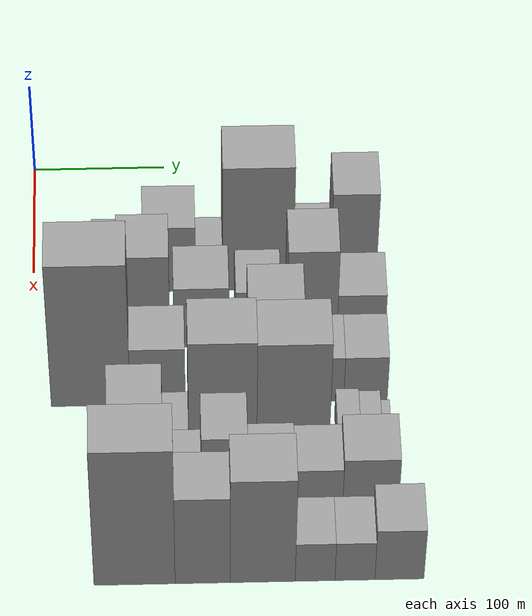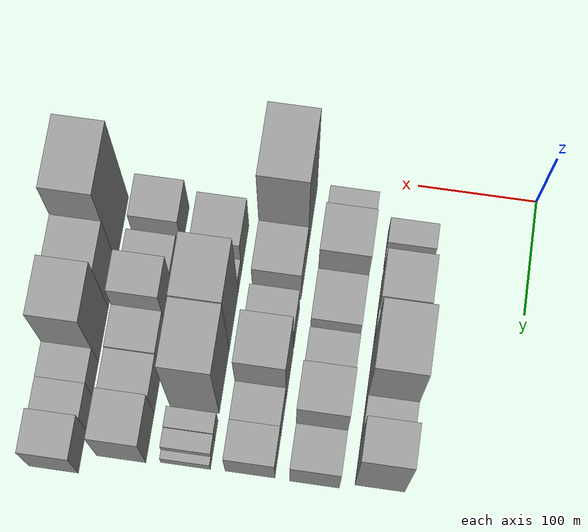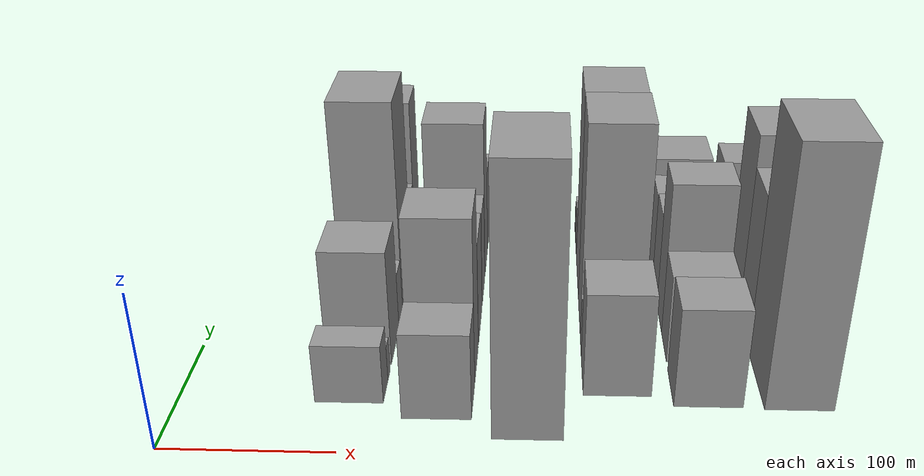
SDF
<sdf version="1.6">
 <world name="default">
  <model name="building_27">
   <static>1</static>
   <pose>100.0000 55.0933 0 0.000000 0.000000 0.000000</pose>
   <link name="link">
    <pose>0 0 19.50 0 0 0</pose>
    <collision name="collision"><geometry><box><size>40.0000 21.3444 39.0000</size></box></geometry></collision>
    <visual name="visual">
     <cast_shadows>0</cast_shadows>
     <geometry><box><size>40.0000 21.3444 39.0000</size></box></geometry>
     <material>
      <script>
       <uri>model://grey_wall/materials/scripts</uri>
       <uri>model://grey_wall/materials/textures</uri>
       <name>vrc/grey_wall</name>
      </script>
     </material>
    </visual>
   </link>
  </model>
  <model name="building_28">
   <static>1</static>
   <pose>100.0000 71.3840 0 0.000000 0.000000 0.000000</pose>
   <link name="link">
    <pose>0 0 12.00 0 0 0</pose>
    <collision name="collision"><geometry><box><size>40.0000 11.2370 24.0000</size></box></geometry></collision>
    <visual name="visual">
     <cast_shadows>0</cast_shadows>
     <geometry><box><size>40.0000 11.2370 24.0000</size></box></geometry>
     <material>
      <script>
       <uri>model://grey_wall/materials/scripts</uri>
       <uri>model://grey_wall/materials/textures</uri>
       <name>vrc/grey_wall</name>
      </script>
     </material>
    </visual>
   </link>
  </model>
  <model name="building_29">
   <static>1</static>
   <pose>100.0000 102.6483 0 0.000000 0.000000 0.000000</pose>
   <link name="link">
    <pose>0 0 39.00 0 0 0</pose>
    <collision name="collision"><geometry><box><size>40.0000 39.2917 78.0000</size></box></geometry></collision>
    <visual name="visual">
     <cast_shadows>0</cast_shadows>
     <geometry><box><size>40.0000 39.2917 78.0000</size></box></geometry>
     <material>
      <script>
       <uri>model://grey_wall/materials/scripts</uri>
       <uri>model://grey_wall/materials/textures</uri>
       <name>vrc/grey_wall</name>
      </script>
     </material>
    </visual>
   </link>
  </model>
  <model name="building_30">
   <static>1</static>
   <pose>100.0000 132.4842 0 0.000000 0.000000 0.000000</pose>
   <link name="link">
    <pose>0 0 19.50 0 0 0</pose>
    <collision name="collision"><geometry><box><size>40.0000 20.3801 39.0000</size></box></geometry></collision>
    <visual name="visual">
     <cast_shadows>0</cast_shadows>
     <geometry><box><size>40.0000 20.3801 39.0000</size></box></geometry>
     <material>
      <script>
       <uri>model://grey_wall/materials/scripts</uri>
       <uri>model://grey_wall/materials/textures</uri>
       <name>vrc/grey_wall</name>
      </script>
     </material>
    </visual>
   </link>
  </model>
  <model name="building_31">
   <static>1</static>
   <pose>100.0000 169.2116 0 0.000000 0.000000 0.000000</pose>
   <link name="link">
    <pose>0 0 73.50 0 0 0</pose>
    <collision name="collision"><geometry><box><size>40.0000 53.0747 147.0000</size></box></geometry></collision>
    <visual name="visual">
     <cast_shadows>0</cast_shadows>
     <geometry><box><size>40.0000 53.0747 147.0000</size></box></geometry>
     <material>
      <script>
       <uri>model://grey_wall/materials/scripts</uri>
       <uri>model://grey_wall/materials/textures</uri>
       <name>vrc/grey_wall</name>
      </script>
     </material>
    </visual>
   </link>
  </model>
  <model name="building_32">
   <static>1</static>
   <pose>100.0000 209.7995 0 0.000000 0.000000 0.000000</pose>
   <link name="link">
    <pose>0 0 27.00 0 0 0</pose>
    <collision name="collision"><geometry><box><size>40.0000 28.1011 54.0000</size></box></geometry></collision>
    <visual name="visual">
     <cast_shadows>0</cast_shadows>
     <geometry><box><size>40.0000 28.1011 54.0000</size></box></geometry>
     <material>
      <script>
       <uri>model://grey_wall/materials/scripts</uri>
       <uri>model://grey_wall/materials/textures</uri>
       <name>vrc/grey_wall</name>
      </script>
     </material>
    </visual>
   </link>
  </model>
  <model name="building_33">
   <static>1</static>
   <pose>100.0000 241.1143 0 0.000000 0.000000 0.000000</pose>
   <link name="link">
    <pose>0 0 57.00 0 0 0</pose>
    <collision name="collision"><geometry><box><size>40.0000 34.5283 114.0000</size></box></geometry></collision>
    <visual name="visual">
     <cast_shadows>0</cast_shadows>
     <geometry><box><size>40.0000 34.5283 114.0000</size></box></geometry>
     <material>
      <script>
       <uri>model://grey_wall/materials/scripts</uri>
       <uri>model://grey_wall/materials/textures</uri>
       <name>vrc/grey_wall</name>
      </script>
     </material>
    </visual>
   </link>
  </model>
  <model name="building_76">
   <static>1</static>
   <pose>152.0000 47.3638 0 0.000000 0.000000 0.000000</pose>
   <link name="link">
    <pose>0 0 28.50 0 0 0</pose>
    <collision name="collision"><geometry><box><size>40.0000 33.5037 57.0000</size></box></geometry></collision>
    <visual name="visual">
     <cast_shadows>0</cast_shadows>
     <geometry><box><size>40.0000 33.5037 57.0000</size></box></geometry>
     <material>
      <script>
       <uri>model://grey_wall/materials/scripts</uri>
       <uri>model://grey_wall/materials/textures</uri>
       <name>vrc/grey_wall</name>
      </script>
     </material>
    </visual>
   </link>
  </model>
  <model name="building_77">
   <static>1</static>
   <pose>152.0000 83.1974 0 0.000000 0.000000 0.000000</pose>
   <link name="link">
    <pose>0 0 55.50 0 0 0</pose>
    <collision name="collision"><geometry><box><size>40.0000 38.1635 111.0000</size></box></geometry></collision>
    <visual name="visual">
     <cast_shadows>0</cast_shadows>
     <geometry><box><size>40.0000 38.1635 111.0000</size></box></geometry>
     <material>
      <script>
       <uri>model://grey_wall/materials/scripts</uri>
       <uri>model://grey_wall/materials/textures</uri>
       <name>vrc/grey_wall</name>
      </script>
     </material>
    </visual>
   </link>
  </model>
  <model name="building_78">
   <static>1</static>
   <pose>152.0000 125.6947 0 0.000000 0.000000 0.000000</pose>
   <link name="link">
    <pose>0 0 36.00 0 0 0</pose>
    <collision name="collision"><geometry><box><size>40.0000 40.8310 72.0000</size></box></geometry></collision>
    <visual name="visual">
     <cast_shadows>0</cast_shadows>
     <geometry><box><size>40.0000 40.8310 72.0000</size></box></geometry>
     <material>
      <script>
       <uri>model://grey_wall/materials/scripts</uri>
       <uri>model://grey_wall/materials/textures</uri>
       <name>vrc/grey_wall</name>
      </script>
     </material>
    </visual>
   </link>
  </model>
  <model name="building_79">
   <static>1</static>
   <pose>152.0000 167.7199 0 0.000000 0.000000 0.000000</pose>
   <link name="link">
    <pose>0 0 33.00 0 0 0</pose>
    <collision name="collision"><geometry><box><size>40.0000 33.2195 66.0000</size></box></geometry></collision>
    <visual name="visual">
     <cast_shadows>0</cast_shadows>
     <geometry><box><size>40.0000 33.2195 66.0000</size></box></geometry>
     <material>
      <script>
       <uri>model://grey_wall/materials/scripts</uri>
       <uri>model://grey_wall/materials/textures</uri>
       <name>vrc/grey_wall</name>
      </script>
     </material>
    </visual>
   </link>
  </model>
  <model name="building_80">
   <static>1</static>
   <pose>152.0000 208.0052 0 0.000000 0.000000 0.000000</pose>
   <link name="link">
    <pose>0 0 57.00 0 0 0</pose>
    <collision name="collision"><geometry><box><size>40.0000 37.3511 114.0000</size></box></geometry></collision>
    <visual name="visual">
     <cast_shadows>0</cast_shadows>
     <geometry><box><size>40.0000 37.3511 114.0000</size></box></geometry>
     <material>
      <script>
       <uri>model://grey_wall/materials/scripts</uri>
       <uri>model://grey_wall/materials/textures</uri>
       <name>vrc/grey_wall</name>
      </script>
     </material>
    </visual>
   </link>
  </model>
  <model name="building_81">
   <static>1</static>
   <pose>152.0000 244.6676 0 0.000000 0.000000 0.000000</pose>
   <link name="link">
    <pose>0 0 30.00 0 0 0</pose>
    <collision name="collision"><geometry><box><size>40.0000 35.9738 60.0000</size></box></geometry></collision>
    <visual name="visual">
     <cast_shadows>0</cast_shadows>
     <geometry><box><size>40.0000 35.9738 60.0000</size></box></geometry>
     <material>
      <script>
       <uri>model://grey_wall/materials/scripts</uri>
       <uri>model://grey_wall/materials/textures</uri>
       <name>vrc/grey_wall</name>
      </script>
     </material>
    </visual>
   </link>
  </model>
  <model name="building_128">
   <static>1</static>
   <pose>204.0000 42.9055 0 0.000000 0.000000 0.000000</pose>
   <link name="link">
    <pose>0 0 85.50 0 0 0</pose>
    <collision name="collision"><geometry><box><size>40.0000 58.2277 171.0000</size></box></geometry></collision>
    <visual name="visual">
     <cast_shadows>0</cast_shadows>
     <geometry><box><size>40.0000 58.2277 171.0000</size></box></geometry>
     <material>
      <script>
       <uri>model://grey_wall/materials/scripts</uri>
       <uri>model://grey_wall/materials/textures</uri>
       <name>vrc/grey_wall</name>
      </script>
     </material>
    </visual>
   </link>
  </model>
  <model name="building_129">
   <static>1</static>
   <pose>204.0000 92.3567 0 0.000000 0.000000 0.000000</pose>
   <link name="link">
    <pose>0 0 34.50 0 0 0</pose>
    <collision name="collision"><geometry><box><size>40.0000 40.6747 69.0000</size></box></geometry></collision>
    <visual name="visual">
     <cast_shadows>0</cast_shadows>
     <geometry><box><size>40.0000 40.6747 69.0000</size></box></geometry>
     <material>
      <script>
       <uri>model://grey_wall/materials/scripts</uri>
       <uri>model://grey_wall/materials/textures</uri>
       <name>vrc/grey_wall</name>
      </script>
     </material>
    </visual>
   </link>
  </model>
  <model name="building_130">
   <static>1</static>
   <pose>204.0000 138.6356 0 0.000000 0.000000 0.000000</pose>
   <link name="link">
    <pose>0 0 30.00 0 0 0</pose>
    <collision name="collision"><geometry><box><size>40.0000 33.8832 60.0000</size></box></geometry></collision>
    <visual name="visual">
     <cast_shadows>0</cast_shadows>
     <geometry><box><size>40.0000 33.8832 60.0000</size></box></geometry>
     <material>
      <script>
       <uri>model://grey_wall/materials/scripts</uri>
       <uri>model://grey_wall/materials/textures</uri>
       <name>vrc/grey_wall</name>
      </script>
     </material>
    </visual>
   </link>
  </model>
  <model name="building_131">
   <static>1</static>
   <pose>204.0000 178.9792 0 0.000000 0.000000 0.000000</pose>
   <link name="link">
    <pose>0 0 58.50 0 0 0</pose>
    <collision name="collision"><geometry><box><size>40.0000 40.8040 117.0000</size></box></geometry></collision>
    <visual name="visual">
     <cast_shadows>0</cast_shadows>
     <geometry><box><size>40.0000 40.8040 117.0000</size></box></geometry>
     <material>
      <script>
       <uri>model://grey_wall/materials/scripts</uri>
       <uri>model://grey_wall/materials/textures</uri>
       <name>vrc/grey_wall</name>
      </script>
     </material>
    </visual>
   </link>
  </model>
  <model name="building_132">
   <static>1</static>
   <pose>204.0000 214.5938 0 0.000000 0.000000 0.000000</pose>
   <link name="link">
    <pose>0 0 27.00 0 0 0</pose>
    <collision name="collision"><geometry><box><size>40.0000 30.4252 54.0000</size></box></geometry></collision>
    <visual name="visual">
     <cast_shadows>0</cast_shadows>
     <geometry><box><size>40.0000 30.4252 54.0000</size></box></geometry>
     <material>
      <script>
       <uri>model://grey_wall/materials/scripts</uri>
       <uri>model://grey_wall/materials/textures</uri>
       <name>vrc/grey_wall</name>
      </script>
     </material>
    </visual>
   </link>
  </model>
  <model name="building_133">
   <static>1</static>
   <pose>204.0000 245.8826 0 0.000000 0.000000 0.000000</pose>
   <link name="link">
    <pose>0 0 27.00 0 0 0</pose>
    <collision name="collision"><geometry><box><size>40.0000 32.1524 54.0000</size></box></geometry></collision>
    <visual name="visual">
     <cast_shadows>0</cast_shadows>
     <geometry><box><size>40.0000 32.1524 54.0000</size></box></geometry>
     <material>
      <script>
       <uri>model://grey_wall/materials/scripts</uri>
       <uri>model://grey_wall/materials/textures</uri>
       <name>vrc/grey_wall</name>
      </script>
     </material>
    </visual>
   </link>
  </model>
  <model name="building_180">
   <static>1</static>
   <pose>256.0000 75.3618 0 0.000000 0.000000 0.000000</pose>
   <link name="link">
    <pose>0 0 34.50 0 0 0</pose>
    <collision name="collision"><geometry><box><size>40.0000 40.0928 69.0000</size></box></geometry></collision>
    <visual name="visual">
     <cast_shadows>0</cast_shadows>
     <geometry><box><size>40.0000 40.0928 69.0000</size></box></geometry>
     <material>
      <script>
       <uri>model://grey_wall/materials/scripts</uri>
       <uri>model://grey_wall/materials/textures</uri>
       <name>vrc/grey_wall</name>
      </script>
     </material>
    </visual>
   </link>
  </model>
  <model name="building_181">
   <static>1</static>
   <pose>256.0000 104.8814 0 0.000000 0.000000 0.000000</pose>
   <link name="link">
    <pose>0 0 16.50 0 0 0</pose>
    <collision name="collision"><geometry><box><size>40.0000 18.9463 33.0000</size></box></geometry></collision>
    <visual name="visual">
     <cast_shadows>0</cast_shadows>
     <geometry><box><size>40.0000 18.9463 33.0000</size></box></geometry>
     <material>
      <script>
       <uri>model://grey_wall/materials/scripts</uri>
       <uri>model://grey_wall/materials/textures</uri>
       <name>vrc/grey_wall</name>
      </script>
     </material>
    </visual>
   </link>
  </model>
  <model name="building_182">
   <static>1</static>
   <pose>256.0000 138.9964 0 0.000000 0.000000 0.000000</pose>
   <link name="link">
    <pose>0 0 73.50 0 0 0</pose>
    <collision name="collision"><geometry><box><size>40.0000 49.2837 147.0000</size></box></geometry></collision>
    <visual name="visual">
     <cast_shadows>0</cast_shadows>
     <geometry><box><size>40.0000 49.2837 147.0000</size></box></geometry>
     <material>
      <script>
       <uri>model://grey_wall/materials/scripts</uri>
       <uri>model://grey_wall/materials/textures</uri>
       <name>vrc/grey_wall</name>
      </script>
     </material>
    </visual>
   </link>
  </model>
  <model name="building_183">
   <static>1</static>
   <pose>256.0000 190.0855 0 0.000000 0.000000 0.000000</pose>
   <link name="link">
    <pose>0 0 72.00 0 0 0</pose>
    <collision name="collision"><geometry><box><size>40.0000 52.8946 144.0000</size></box></geometry></collision>
    <visual name="visual">
     <cast_shadows>0</cast_shadows>
     <geometry><box><size>40.0000 52.8946 144.0000</size></box></geometry>
     <material>
      <script>
       <uri>model://grey_wall/materials/scripts</uri>
       <uri>model://grey_wall/materials/textures</uri>
       <name>vrc/grey_wall</name>
      </script>
     </material>
    </visual>
   </link>
  </model>
  <model name="building_184">
   <static>1</static>
   <pose>256.0000 230.9423 0 0.000000 0.000000 0.000000</pose>
   <link name="link">
    <pose>0 0 16.50 0 0 0</pose>
    <collision name="collision"><geometry><box><size>40.0000 16.8190 33.0000</size></box></geometry></collision>
    <visual name="visual">
     <cast_shadows>0</cast_shadows>
     <geometry><box><size>40.0000 16.8190 33.0000</size></box></geometry>
     <material>
      <script>
       <uri>model://grey_wall/materials/scripts</uri>
       <uri>model://grey_wall/materials/textures</uri>
       <name>vrc/grey_wall</name>
      </script>
     </material>
    </visual>
   </link>
  </model>
  <model name="building_185">
   <static>1</static>
   <pose>256.0000 247.2263 0 0.000000 0.000000 0.000000</pose>
   <link name="link">
    <pose>0 0 15.00 0 0 0</pose>
    <collision name="collision"><geometry><box><size>40.0000 15.7489 30.0000</size></box></geometry></collision>
    <visual name="visual">
     <cast_shadows>0</cast_shadows>
     <geometry><box><size>40.0000 15.7489 30.0000</size></box></geometry>
     <material>
      <script>
       <uri>model://grey_wall/materials/scripts</uri>
       <uri>model://grey_wall/materials/textures</uri>
       <name>vrc/grey_wall</name>
      </script>
     </material>
    </visual>
   </link>
  </model>
  <model name="building_186">
   <static>1</static>
   <pose>256.0000 258.7802 0 0.000000 0.000000 0.000000</pose>
   <link name="link">
    <pose>0 0 9.00 0 0 0</pose>
    <collision name="collision"><geometry><box><size>40.0000 7.3590 18.0000</size></box></geometry></collision>
    <visual name="visual">
     <cast_shadows>0</cast_shadows>
     <geometry><box><size>40.0000 7.3590 18.0000</size></box></geometry>
     <material>
      <script>
       <uri>model://grey_wall/materials/scripts</uri>
       <uri>model://grey_wall/materials/textures</uri>
       <name>vrc/grey_wall</name>
      </script>
     </material>
    </visual>
   </link>
  </model>
  <model name="building_230">
   <static>1</static>
   <pose>308.0000 64.0724 0 0.000000 0.000000 0.000000</pose>
   <link name="link">
    <pose>0 0 33.00 0 0 0</pose>
    <collision name="collision"><geometry><box><size>40.0000 35.6841 66.0000</size></box></geometry></collision>
    <visual name="visual">
     <cast_shadows>0</cast_shadows>
     <geometry><box><size>40.0000 35.6841 66.0000</size></box></geometry>
     <material>
      <script>
       <uri>model://grey_wall/materials/scripts</uri>
       <uri>model://grey_wall/materials/textures</uri>
       <name>vrc/grey_wall</name>
      </script>
     </material>
    </visual>
   </link>
  </model>
  <model name="building_231">
   <static>1</static>
   <pose>308.0000 106.7965 0 0.000000 0.000000 0.000000</pose>
   <link name="link">
    <pose>0 0 30.00 0 0 0</pose>
    <collision name="collision"><geometry><box><size>40.0000 31.7642 60.0000</size></box></geometry></collision>
    <visual name="visual">
     <cast_shadows>0</cast_shadows>
     <geometry><box><size>40.0000 31.7642 60.0000</size></box></geometry>
     <material>
      <script>
       <uri>model://grey_wall/materials/scripts</uri>
       <uri>model://grey_wall/materials/textures</uri>
       <name>vrc/grey_wall</name>
      </script>
     </material>
    </visual>
   </link>
  </model>
  <model name="building_232">
   <static>1</static>
   <pose>308.0000 139.0412 0 0.000000 0.000000 0.000000</pose>
   <link name="link">
    <pose>0 0 52.50 0 0 0</pose>
    <collision name="collision"><geometry><box><size>40.0000 32.7251 105.0000</size></box></geometry></collision>
    <visual name="visual">
     <cast_shadows>0</cast_shadows>
     <geometry><box><size>40.0000 32.7251 105.0000</size></box></geometry>
     <material>
      <script>
       <uri>model://grey_wall/materials/scripts</uri>
       <uri>model://grey_wall/materials/textures</uri>
       <name>vrc/grey_wall</name>
      </script>
     </material>
    </visual>
   </link>
  </model>
  <model name="building_233">
   <static>1</static>
   <pose>308.0000 172.4441 0 0.000000 0.000000 0.000000</pose>
   <link name="link">
    <pose>0 0 33.00 0 0 0</pose>
    <collision name="collision"><geometry><box><size>40.0000 34.0806 66.0000</size></box></geometry></collision>
    <visual name="visual">
     <cast_shadows>0</cast_shadows>
     <geometry><box><size>40.0000 34.0806 66.0000</size></box></geometry>
     <material>
      <script>
       <uri>model://grey_wall/materials/scripts</uri>
       <uri>model://grey_wall/materials/textures</uri>
       <name>vrc/grey_wall</name>
      </script>
     </material>
    </visual>
   </link>
  </model>
  <model name="building_234">
   <static>1</static>
   <pose>308.0000 206.8047 0 0.000000 0.000000 0.000000</pose>
   <link name="link">
    <pose>0 0 31.50 0 0 0</pose>
    <collision name="collision"><geometry><box><size>40.0000 34.6407 63.0000</size></box></geometry></collision>
    <visual name="visual">
     <cast_shadows>0</cast_shadows>
     <geometry><box><size>40.0000 34.6407 63.0000</size></box></geometry>
     <material>
      <script>
       <uri>model://grey_wall/materials/scripts</uri>
       <uri>model://grey_wall/materials/textures</uri>
       <name>vrc/grey_wall</name>
      </script>
     </material>
    </visual>
   </link>
  </model>
  <model name="building_235">
   <static>1</static>
   <pose>308.0000 244.2561 0 0.000000 0.000000 0.000000</pose>
   <link name="link">
    <pose>0 0 37.50 0 0 0</pose>
    <collision name="collision"><geometry><box><size>40.0000 40.2621 75.0000</size></box></geometry></collision>
    <visual name="visual">
     <cast_shadows>0</cast_shadows>
     <geometry><box><size>40.0000 40.2621 75.0000</size></box></geometry>
     <material>
      <script>
       <uri>model://grey_wall/materials/scripts</uri>
       <uri>model://grey_wall/materials/textures</uri>
       <name>vrc/grey_wall</name>
      </script>
     </material>
    </visual>
   </link>
  </model>
  <model name="building_283">
   <static>1</static>
   <pose>360.0000 73.7368 0 0.000000 0.000000 0.000000</pose>
   <link name="link">
    <pose>0 0 84.00 0 0 0</pose>
    <collision name="collision"><geometry><box><size>40.0000 57.8784 168.0000</size></box></geometry></collision>
    <visual name="visual">
     <cast_shadows>0</cast_shadows>
     <geometry><box><size>40.0000 57.8784 168.0000</size></box></geometry>
     <material>
      <script>
       <uri>model://grey_wall/materials/scripts</uri>
       <uri>model://grey_wall/materials/textures</uri>
       <name>vrc/grey_wall</name>
      </script>
     </material>
    </visual>
   </link>
  </model>
  <model name="building_284">
   <static>1</static>
   <pose>360.0000 122.2816 0 0.000000 0.000000 0.000000</pose>
   <link name="link">
    <pose>0 0 54.00 0 0 0</pose>
    <collision name="collision"><geometry><box><size>40.0000 39.2112 108.0000</size></box></geometry></collision>
    <visual name="visual">
     <cast_shadows>0</cast_shadows>
     <geometry><box><size>40.0000 39.2112 108.0000</size></box></geometry>
     <material>
      <script>
       <uri>model://grey_wall/materials/scripts</uri>
       <uri>model://grey_wall/materials/textures</uri>
       <name>vrc/grey_wall</name>
      </script>
     </material>
    </visual>
   </link>
  </model>
  <model name="building_285">
   <static>1</static>
   <pose>360.0000 165.1143 0 0.000000 0.000000 0.000000</pose>
   <link name="link">
    <pose>0 0 64.50 0 0 0</pose>
    <collision name="collision"><geometry><box><size>40.0000 46.4543 129.0000</size></box></geometry></collision>
    <visual name="visual">
     <cast_shadows>0</cast_shadows>
     <geometry><box><size>40.0000 46.4543 129.0000</size></box></geometry>
     <material>
      <script>
       <uri>model://grey_wall/materials/scripts</uri>
       <uri>model://grey_wall/materials/textures</uri>
       <name>vrc/grey_wall</name>
      </script>
     </material>
    </visual>
   </link>
  </model>
  <model name="building_286">
   <static>1</static>
   <pose>360.0000 202.5214 0 0.000000 0.000000 0.000000</pose>
   <link name="link">
    <pose>0 0 24.00 0 0 0</pose>
    <collision name="collision"><geometry><box><size>40.0000 28.3599 48.0000</size></box></geometry></collision>
    <visual name="visual">
     <cast_shadows>0</cast_shadows>
     <geometry><box><size>40.0000 28.3599 48.0000</size></box></geometry>
     <material>
      <script>
       <uri>model://grey_wall/materials/scripts</uri>
       <uri>model://grey_wall/materials/textures</uri>
       <name>vrc/grey_wall</name>
      </script>
     </material>
    </visual>
   </link>
  </model>
  <model name="building_287">
   <static>1</static>
   <pose>360.0000 230.9682 0 0.000000 0.000000 0.000000</pose>
   <link name="link">
    <pose>0 0 24.00 0 0 0</pose>
    <collision name="collision"><geometry><box><size>40.0000 28.5337 48.0000</size></box></geometry></collision>
    <visual name="visual">
     <cast_shadows>0</cast_shadows>
     <geometry><box><size>40.0000 28.5337 48.0000</size></box></geometry>
     <material>
      <script>
       <uri>model://grey_wall/materials/scripts</uri>
       <uri>model://grey_wall/materials/textures</uri>
       <name>vrc/grey_wall</name>
      </script>
     </material>
    </visual>
   </link>
  </model>
  <model name="building_288">
   <static>1</static>
   <pose>360.0000 262.7713 0 0.000000 0.000000 0.000000</pose>
   <link name="link">
    <pose>0 0 31.50 0 0 0</pose>
    <collision name="collision"><geometry><box><size>40.0000 35.0725 63.0000</size></box></geometry></collision>
    <visual name="visual">
     <cast_shadows>0</cast_shadows>
     <geometry><box><size>40.0000 35.0725 63.0000</size></box></geometry>
     <material>
      <script>
       <uri>model://grey_wall/materials/scripts</uri>
       <uri>model://grey_wall/materials/textures</uri>
       <name>vrc/grey_wall</name>
      </script>
     </material>
    </visual>
   </link>
  </model>
 </world>
</sdf>
